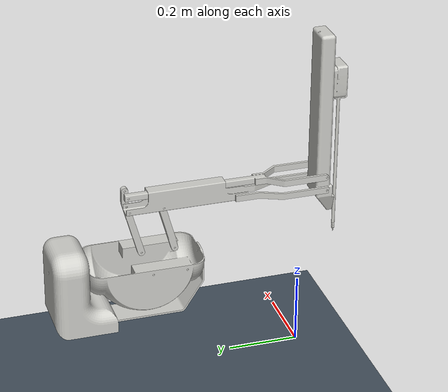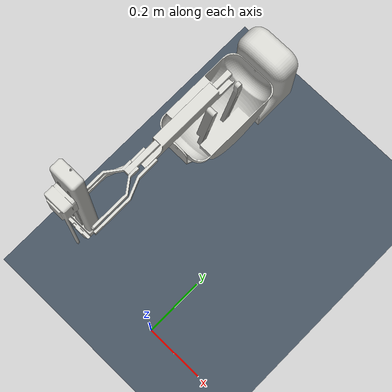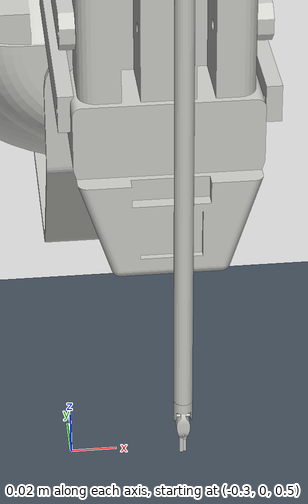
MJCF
<mujoco model="dvrk_psm_official_control_dynamics">
  <compiler angle="radian" meshdir="." autolimits="true" balanceinertia="true"/>
  <option timestep="0.002" iterations="80" integrator="implicitfast"/>
  <statistic center="-0.25 0 0.5" extent="1.2"/>

  <visual>
    <headlight diffuse="0.6 0.6 0.6" ambient="0.3 0.3 0.3" specular="0 0 0"/>
    <global azimuth="135" elevation="-20"/>
  </visual>

  <asset>
    <texture type="skybox" builtin="gradient" rgb1="0.3 0.45 0.65" rgb2="0 0 0" width="512" height="3072"/>
    <material name="psm_mat" rgba="0.8 0.8 0.78 1" specular="0.25" shininess="0.4"/>
    <mesh name="mesh_0_psm_base" file="converted_meshes/meshes/Classic/PSM/psm_base.obj"/>
    <mesh name="mesh_1_outer_yaw" file="converted_meshes/meshes/Classic/PSM/outer_yaw.obj"/>
    <mesh name="mesh_2_outer_pitch_back" file="converted_meshes/meshes/Classic/PSM/outer_pitch_back.obj"/>
    <mesh name="mesh_3_outer_pitch_front" file="converted_meshes/meshes/Classic/PSM/outer_pitch_front.obj"/>
    <mesh name="mesh_4_outer_pitch_bottom" file="converted_meshes/meshes/Classic/PSM/outer_pitch_bottom.obj"/>
    <mesh name="mesh_5_outer_pitch_top" file="converted_meshes/meshes/Classic/PSM/outer_pitch_top.obj"/>
    <mesh name="mesh_6_outer_insertion" file="converted_meshes/meshes/Classic/PSM/outer_insertion.obj"/>
    <mesh name="mesh_7_tool_main" file="converted_meshes/meshes/Classic/PSM/tool_main.obj"/>
    <mesh name="mesh_8_tool_wrist_link" file="converted_meshes/meshes/Classic/PSM/tool_wrist_link.obj"/>
    <mesh name="mesh_9_tool_wrist_shaft_link" file="converted_meshes/meshes/Classic/PSM/tool_wrist_shaft_link.obj"/>
    <mesh name="mesh_10_tool_wrist_sca_link" file="converted_meshes/meshes/Classic/PSM/tool_wrist_sca_link.obj"/>
    <mesh name="mesh_11_tool_wrist_sca_shaft_link" file="converted_meshes/meshes/Classic/PSM/tool_wrist_sca_shaft_link.obj"/>
    <mesh name="mesh_12_tool_wrist_sca_link_2" file="converted_meshes/meshes/Classic/PSM/tool_wrist_sca_link_2.obj"/>
  </asset>

  <worldbody>
    <light pos="0 0 1.5" dir="0 0 -1" directional="true"/>
    <geom name="floor" type="plane" size="1 1 0.01" rgba="0.25 0.3 0.35 1"/>

    <body name="psm_base" pos="-0.25 0.0 0.5" quat="6.12323399574e-17 0 0 1">
      <inertial pos="0.0006075 0.0 0.0121153" mass="6.0667823" fullinertia="1.3183907 3.73e-5 1.3183903 0.0 0.0 0.0"/>
      <geom name="psm_base_visual_0" type="mesh" mesh="mesh_0_psm_base" material="psm_mat" pos="0.039 -0.40788 -0.07879" quat="-2.59734346696e-06 -2.59735300756e-06 0.707108079855 0.707105482506" contype="0" conaffinity="0" group="2" density="0"/>

      <body name="outer_yaw" pos="0.0 0.0 0.0" quat="0.499998163397 0.500001836603 -0.499999999997 0.499999999997">
        <inertial pos="0.0110856 0.0195141 -0.0721861" mass="10.0001371" fullinertia="0.0044209 0.0235898 0.0265699 0.0090817 -0.0040484 0.0015899"/>
        <joint name="yaw" type="hinge" axis="0 0 1" range="-1.5707 1.5707" damping="2" armature="0.02" frictionloss="0.01"/>
        <geom name="outer_yaw_visual_0" type="mesh" mesh="mesh_1_outer_yaw" material="psm_mat" pos="0.0125 0 0.5265" quat="-2.59734346696e-06 0.707105482506 0.707108079855 -2.59735300756e-06" contype="0" conaffinity="0" group="2" density="0"/>

        <body name="outer_pitch" pos="0 0 0" quat="0.499998163397 -0.499999999997 -0.499999999997 -0.500001836603">
          <inertial pos="-0.0173905 0.1752131 -0.0199989" mass="2.956747" fullinertia="90.0948873 3.61e-5 90.0948874 2.4e-5 4e-7 2.87e-5"/>
          <joint name="pitch" type="hinge" axis="0 0 1" range="-0.7854 0.7854" damping="2" armature="0.02" frictionloss="0.01"/>

          <body name="tool_main" pos="0 0.4318 0" quat="0.707105482511 0.707108079859 0 0">
            <inertial pos="-0.0299994 0.2978392 0.030008" mass="0.4796773" fullinertia="37.04596 3.69e-5 37.04596 1e-7 0.0 -2e-7"/>
            <joint name="insertion" type="slide" axis="0 0 1" range="0 0.240" damping="2" armature="0.02" frictionloss="0.01"/>
            <geom name="tool_main_visual_0" type="mesh" mesh="mesh_7_tool_main" material="psm_mat" pos="0 0 0.041" quat="0.707105482511 0 0 0.707108079859" contype="0" conaffinity="0" group="2" density="0"/>

            <body name="tool_wrist" pos="0 0 0.4162" quat="1 0 0 0">
              <inertial pos="0.0293552 -7e-7 -0.0500018" mass="0.1000014" fullinertia="6.94e-5 2.56e-5 8.04e-5 -3.59e-5 -1.2e-5 -2.07e-7"/>
              <joint name="roll" type="hinge" axis="0 0 1" range="-2.2689 2.2689" damping="2" armature="0.02" frictionloss="0.01"/>
              <geom name="tool_wrist_visual_0" type="mesh" mesh="mesh_8_tool_wrist_link" material="psm_mat" pos="0 0 -0.0091" quat="0.707105482511 0 0 0.707108079859" contype="0" conaffinity="0" group="2" density="0"/>

              <body name="wrist_shaft" pos="0 0 0.0" quat="1 0 0 0">
                <inertial pos="-0.02 0.0455733 -0.1400001" mass="0.5000069" fullinertia="6.96e-5 2.61e-5 8.04e-5 -3.58e-5 -1.19e-5 -2.06e-7"/>
                <geom name="wrist_shaft_visual_0" type="mesh" mesh="mesh_9_tool_wrist_shaft_link" material="psm_mat" pos="0 0.00401 0" quat="0.707105482511 0.707108079859 0 0" contype="0" conaffinity="0" group="2" density="0"/>

                <body name="wrist_sca" pos="0 0 0" quat="0.499998163397 -0.499999999997 -0.499999999997 -0.500001836603">
                  <inertial pos="-0.0199936 -0.0199883 0.0995037" mass="0.3630268" fullinertia="6.9e-5 2.54e-5 8.02e-5 -3.58e-5 -1.2e-5 -2.07e-7"/>
                  <joint name="wrist_pitch" type="hinge" axis="0 0 1" range="-1.5707 1.5707" damping="2" armature="0.02" frictionloss="0.01"/>
                  <geom name="wrist_sca_visual_0" type="mesh" mesh="mesh_10_tool_wrist_sca_link" material="psm_mat" pos="0.0051 0.0032 0" quat="-2.59734346696e-06 -2.59735300756e-06 0.707105482506 -0.707108079855" contype="0" conaffinity="0" group="2" density="0"/>

                  <body name="sca_shaft" pos="0.0091 0 0" quat="0.499998163397 -0.499999999997 -0.499999999997 -0.500001836603">
                    <inertial pos="-0.018457 -0.0260167 -0.0994826" mass="0.3499395" fullinertia="6.97e-5 2.58e-5 8.07e-5 -3.6e-5 -1.23e-5 -2.11e-7"/>
                    <joint name="wrist_yaw" type="hinge" axis="0 0 1" range="-1.3963 1.3963" damping="2" armature="0.02" frictionloss="0.01"/>
                    <geom name="sca_shaft_visual_0" type="mesh" mesh="mesh_11_tool_wrist_sca_shaft_link" material="psm_mat" pos="0 -0.0002 -0.0025" quat="1 0 0 0" contype="0" conaffinity="0" group="2" density="0"/>

                    <!-- Small placeholder inertias for auxiliary bodies -->
                    <body name="sca_ee_0" pos="0 0 0" quat="1 0 0 0">
                      <inertial pos="0 0 0" mass="0.01" diaginertia="1e-6 1e-6 1e-6"/>
                      <joint name="jaw" type="hinge" axis="0 0 1" range="0 1.5707" damping="2" armature="0.02" frictionloss="0.01"/>
                    </body>
                    <body name="sca_ee_1" pos="0 0 0" quat="1 0 0 0">
                      <inertial pos="0 0 0" mass="0.01" diaginertia="1e-6 1e-6 1e-6"/>
                      <joint name="jaw_mimic_1" type="hinge" axis="0 0 1" range="-1.5707 1.5707" damping="2" armature="0.02" frictionloss="0.01"/>
                      <geom name="sca_ee_1_visual_0" type="mesh" mesh="mesh_12_tool_wrist_sca_link_2" material="psm_mat" pos="0 0 0" quat="1 0 0 0" contype="0" conaffinity="0" group="2" density="0"/>
                    </body>
                    <body name="sca_ee_2" pos="0 0 0" quat="1 0 0 0">
                      <inertial pos="0 0 0" mass="0.01" diaginertia="1e-6 1e-6 1e-6"/>
                      <joint name="jaw_mimic_2" type="hinge" axis="0 0 1" range="-1.5707 1.5707" damping="2" armature="0.02" frictionloss="0.01"/>
                      <geom name="sca_ee_2_visual_0" type="mesh" mesh="mesh_12_tool_wrist_sca_link_2" material="psm_mat" pos="0 0 0" quat="-0.00500365232585 -0 0.999987481653 -0" contype="0" conaffinity="0" group="2" density="0"/>
                    </body>
                    <body name="PSM1_tool_tip_link" pos="0 0.0102 0" quat="0.5 -0.5 0.5 0.5">
                      <inertial pos="0 0 0" mass="0.01" diaginertia="1e-6 1e-6 1e-6"/>
                    </body>
                  </body>
                </body>
              </body>
            </body>
          </body>
        </body>

        <!-- Parallelogram/auxiliary structure: keep minimal inertias (placeholders) -->
        <body name="outer_pitch_back" pos="0 0.0295 0.5185" quat="0.499998163397 -0.499999999997 -0.499999999997 -0.500001836603">
          <inertial pos="0 0 0" mass="0.01" diaginertia="1e-6 1e-6 1e-6"/>
          <joint name="pitch_1" type="hinge" axis="0 0 1" range="-3.141592653589793 3.141592653589793" damping="2" armature="0.02" frictionloss="0.01"/>
          <geom name="outer_pitch_back_visual_0" type="mesh" mesh="mesh_2_outer_pitch_back" material="psm_mat" pos="0 0 0" quat="0.99081431434 0 0 -0.135229414325" contype="0" conaffinity="0" group="2" density="0"/>

          <body name="outer_pitch_bottom" pos="0.04178 0.15007 -0.0137" quat="1 0 0 0">
            <inertial pos="0 0 0" mass="0.01" diaginertia="1e-6 1e-6 1e-6"/>
            <joint name="pitch_3" type="hinge" axis="0 0 1" range="-3.141592653589793 3.141592653589793" damping="2" armature="0.02" frictionloss="0.01"/>
            <geom name="outer_pitch_bottom_visual_0" type="mesh" mesh="mesh_4_outer_pitch_bottom" material="psm_mat" pos="0.009 0 0" quat="0.707105482511 0 -0.707108079859 0" contype="0" conaffinity="0" group="2" density="0"/>
            <body name="outer_insertion" pos="-0.520 0 -0.0155" quat="1 0 0 0">
              <inertial pos="0 0 0" mass="0.01" diaginertia="1e-6 1e-6 1e-6"/>
              <joint name="pitch_5" type="hinge" axis="0 0 1" range="-3.141592653589793 3.141592653589793" damping="2" armature="0.02" frictionloss="0.01"/>
              <geom name="outer_insertion_visual_0" type="mesh" mesh="mesh_6_outer_insertion" material="psm_mat" pos="0.02528 0.429 0" quat="0.499998163397 0.500001836603 -0.499999999997 0.499999999997" contype="0" conaffinity="0" group="2" density="0"/>
            </body>
          </body>

          <body name="outer_pitch_top" pos="0.04209 0.18695 -0.02412" quat="1 0 0 0">
            <inertial pos="0 0 0" mass="0.01" diaginertia="1e-6 1e-6 1e-6"/>
            <joint name="pitch_4" type="hinge" axis="0 0 1" range="-3.141592653589793 3.141592653589793" damping="2" armature="0.02" frictionloss="0.01"/>
            <geom name="outer_pitch_top_visual_0" type="mesh" mesh="mesh_5_outer_pitch_top" material="psm_mat" pos="0.009 0 0" quat="0.707105482511 0 -0.707108079859 0" contype="0" conaffinity="0" group="2" density="0"/>
          </body>
        </body>

        <body name="outer_pitch_front" pos="0 0.0295 0.4285" quat="0.499998163397 -0.499999999997 -0.499999999997 -0.500001836603">
          <inertial pos="0 0 0" mass="0.01" diaginertia="1e-6 1e-6 1e-6"/>
          <joint name="pitch_2" type="hinge" axis="0 0 1" range="-3.141592653589793 3.141592653589793" damping="2" armature="0.02" frictionloss="0.01"/>
          <geom name="outer_pitch_front_visual_0" type="mesh" mesh="mesh_3_outer_pitch_front" material="psm_mat" pos="0 0 0" quat="0.99081431434 0 0 -0.135229414325" contype="0" conaffinity="0" group="2" density="0"/>
        </body>
      </body>
    </body>
  </worldbody>

  <equality>
    <joint name="eq_pitch_1" joint1="pitch_1" joint2="pitch" polycoef="0 1 0 0 0" solref="0.005 1"/>
    <joint name="eq_pitch_2" joint1="pitch_2" joint2="pitch" polycoef="0 1 0 0 0" solref="0.005 1"/>
    <joint name="eq_pitch_3" joint1="pitch_3" joint2="pitch" polycoef="0 -1 0 0 0" solref="0.005 1"/>
    <joint name="eq_pitch_4" joint1="pitch_4" joint2="pitch" polycoef="0 -1 0 0 0" solref="0.005 1"/>
    <joint name="eq_pitch_5" joint1="pitch_5" joint2="pitch" polycoef="0 1 0 0 0" solref="0.005 1"/>
    <joint name="eq_jaw_mimic_1" joint1="jaw_mimic_1" joint2="jaw" polycoef="0 0.5 0 0 0" solref="0.005 1"/>
    <joint name="eq_jaw_mimic_2" joint1="jaw_mimic_2" joint2="jaw" polycoef="0 -0.5 0 0 0" solref="0.005 1"/>
  </equality>

  <actuator>
    <position name="ctrl_yaw" joint="yaw" kp="60" ctrlrange="-1.5707 1.5707" forcelimited="true" forcerange="-80 80"/>
    <position name="ctrl_pitch" joint="pitch" kp="60" ctrlrange="-0.7854 0.7854" forcelimited="true" forcerange="-80 80"/>
    <position name="ctrl_insertion" joint="insertion" kp="400" ctrlrange="0 0.240" forcelimited="true" forcerange="-120 120"/>
    <position name="ctrl_roll" joint="roll" kp="60" ctrlrange="-2.2689 2.2689" forcelimited="true" forcerange="-80 80"/>
    <position name="ctrl_wrist_pitch" joint="wrist_pitch" kp="60" ctrlrange="-1.5707 1.5707" forcelimited="true" forcerange="-80 80"/>
    <position name="ctrl_wrist_yaw" joint="wrist_yaw" kp="60" ctrlrange="-1.3963 1.3963" forcelimited="true" forcerange="-80 80"/>
    <position name="ctrl_jaw" joint="jaw" kp="15" ctrlrange="0 1.5707" forcelimited="true" forcerange="-20 20"/>
  </actuator>
</mujoco>
